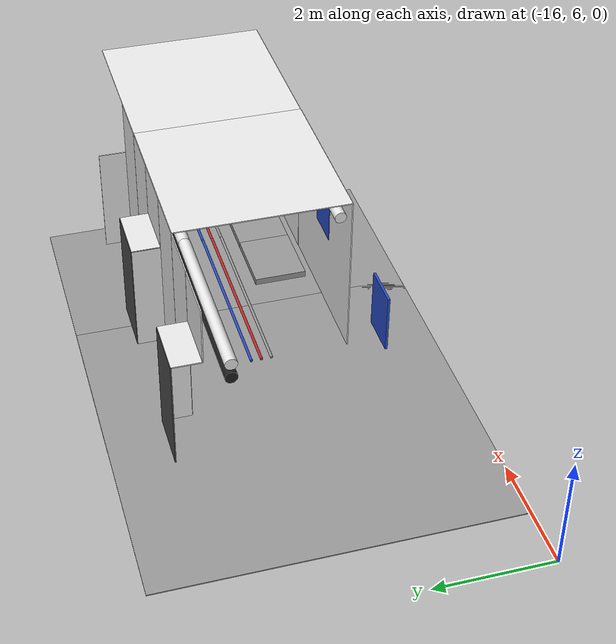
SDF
<sdf version="1.6">
 <world name="default">
  <model name="wall_left_-2_3_0_1">
   <static>1</static>
   <pose>-6.0 7.5 1.5 0.0 0.0 3.14</pose>
   <link name="link">
    <collision name="collision"><geometry><box><size>3.0 0.02 3.0</size></box></geometry></collision>
    <visual name="visual">
     <material>
      <script><name>Gazebo/White</name><uri>file://media/materials/scripts/gazebo.material</uri></script>
     </material>
     <geometry><box><size>3.0 0.02 3.0</size></box></geometry>
    </visual>
   </link>
  </model>
  <model name="wall_top_-2_3_0_1">
   <static>1</static>
   <pose>-6.0 9.0 3.0 1.57 0.0 1.57</pose>
   <link name="link">
    <collision name="collision"><geometry><box><size>3.0 0.02 3.0</size></box></geometry></collision>
    <visual name="visual">
     <material>
      <script><name>Gazebo/White</name><uri>file://media/materials/scripts/gazebo.material</uri></script>
     </material>
     <geometry><box><size>3.0 0.02 3.0</size></box></geometry>
    </visual>
   </link>
  </model>
  <model name="ceiling_1_-2_3_0_1">
   <pose>-6.0 9.0 2.55 0.0 0.0 1.57</pose>
   <link name="link_1">
    <visual name="visual">
     <geometry><box><size>0.8 1 0.1</size></box></geometry>
     <material>
      <script><uri>file://media/materials/scripts/gazebo.material</uri><name>Gazebo/Grey</name></script>
     </material>
    </visual>
    <collision name="collision"><geometry><box><size>0.8 1 0.1</size></box></geometry></collision>
   </link>
   <static>1</static>
  </model>
  <model name="ceiling_1_-2_3_2_1">
   <pose>-7.0 9.0 2.55 0.0 0.0 1.57</pose>
   <link name="link_1">
    <visual name="visual">
     <geometry><box><size>0.8 1 0.1</size></box></geometry>
     <material>
      <script><uri>file://media/materials/scripts/gazebo.material</uri><name>Gazebo/Grey</name></script>
     </material>
    </visual>
    <collision name="collision"><geometry><box><size>0.8 1 0.1</size></box></geometry></collision>
   </link>
   <static>1</static>
  </model>
  <model name="white_pipe_left_-2_3_0_1">
   <static>1</static>
   <pose>-6.0 9.0 2.76 0.0 0.0 1.57</pose>
   <link name="link_0">
    <visual name="visual">
     <pose>-1.3 0 0 1.57 0 0</pose>
     <geometry><cylinder><radius>0.1</radius><length>3.0</length></cylinder></geometry>
     <material>
      <script><uri>file://media/materials/scripts/gazebo.material</uri><name>Gazebo/White</name></script>
     </material>
    </visual>
    <collision name="collision">
     <pose>-1.3 0 0 1.57 0 0</pose>
     <geometry><cylinder><radius>0.1</radius><length>3.0</length></cylinder></geometry>
    </collision>
   </link>
  </model>
  <model name="white_pipe_right_-2_3_0_1">
   <static>1</static>
   <pose>-6.0 9.0 2.76 0.0 0.0 1.57</pose>
   <link name="link_0">
    <visual name="visual">
     <pose>1.3 0 0 1.57 0 0</pose>
     <geometry><cylinder><radius>0.1</radius><length>3.0</length></cylinder></geometry>
     <material>
      <script><uri>file://media/materials/scripts/gazebo.material</uri><name>Gazebo/White</name></script>
     </material>
    </visual>
    <collision name="collision">
     <pose>1.3 0 0 1.57 0 0</pose>
     <geometry><cylinder><radius>0.1</radius><length>3.0</length></cylinder></geometry>
    </collision>
   </link>
  </model>
  <model name="wall_right_front_left_-2_3_0_1">
   <static>1</static>
   <pose>-7.0 10.5 1.5 0.0 0.0 3.14</pose>
   <link name="link">
    <collision name="collision"><geometry><box><size>1.0 0.02 3.0</size></box></geometry></collision>
    <visual name="visual">
     <material>
      <script><name>Gazebo/White</name><uri>file://media/materials/scripts/gazebo.material</uri></script>
     </material>
     <geometry><box><size>1.0 0.02 3.0</size></box></geometry>
    </visual>
   </link>
  </model>
  <model name="wall_right_inside_left_-2_3_0_1">
   <static>1</static>
   <pose>-6.5 10.75 1.0 0.0 0.0 1.57</pose>
   <link name="link">
    <collision name="collision"><geometry><box><size>0.5 0.02 2</size></box></geometry></collision>
    <visual name="visual">
     <material>
      <script><name>Gazebo/White</name><uri>file://media/materials/scripts/gazebo.material</uri></script>
     </material>
     <geometry><box><size>0.5 0.02 2</size></box></geometry>
    </visual>
   </link>
  </model>
  <model name="wall_left_-3_3_0_1">
   <static>1</static>
   <pose>-9.0 7.5 1.5 0.0 0.0 3.14</pose>
   <link name="link">
    <collision name="collision"><geometry><box><size>3.0 0.02 3.0</size></box></geometry></collision>
    <visual name="visual">
     <material>
      <script><name>Gazebo/White</name><uri>file://media/materials/scripts/gazebo.material</uri></script>
     </material>
     <geometry><box><size>3.0 0.02 3.0</size></box></geometry>
    </visual>
   </link>
  </model>
  <model name="wall_top_-3_3_0_1">
   <static>1</static>
   <pose>-9.0 9.0 3.0 1.57 0.0 1.57</pose>
   <link name="link">
    <collision name="collision"><geometry><box><size>3.0 0.02 3.0</size></box></geometry></collision>
    <visual name="visual">
     <material>
      <script><name>Gazebo/White</name><uri>file://media/materials/scripts/gazebo.material</uri></script>
     </material>
     <geometry><box><size>3.0 0.02 3.0</size></box></geometry>
    </visual>
   </link>
  </model>
  <model name="ceiling_1_-3_3_0_1">
   <pose>-9.0 9.0 2.55 0.0 0.0 1.57</pose>
   <link name="link_1">
    <visual name="visual">
     <geometry><box><size>0.8 1 0.1</size></box></geometry>
     <material>
      <script><uri>file://media/materials/scripts/gazebo.material</uri><name>Gazebo/Grey</name></script>
     </material>
    </visual>
    <collision name="collision"><geometry><box><size>0.8 1 0.1</size></box></geometry></collision>
   </link>
   <static>1</static>
  </model>
  <model name="ceiling_1_-3_3_1_1">
   <pose>-8.0 9.0 2.55 0.0 0.0 1.57</pose>
   <link name="link_1">
    <visual name="visual">
     <geometry><box><size>0.8 1 0.1</size></box></geometry>
     <material>
      <script><uri>file://media/materials/scripts/gazebo.material</uri><name>Gazebo/Grey</name></script>
     </material>
    </visual>
    <collision name="collision"><geometry><box><size>0.8 1 0.1</size></box></geometry></collision>
   </link>
   <static>1</static>
  </model>
  <model name="ceiling_1_-3_3_2_1">
   <pose>-10.0 9.0 2.55 0.0 0.0 1.57</pose>
   <link name="link_1">
    <visual name="visual">
     <geometry><box><size>0.8 1 0.1</size></box></geometry>
     <material>
      <script><uri>file://media/materials/scripts/gazebo.material</uri><name>Gazebo/Grey</name></script>
     </material>
    </visual>
    <collision name="collision"><geometry><box><size>0.8 1 0.1</size></box></geometry></collision>
   </link>
   <static>1</static>
  </model>
  <model name="white_pipe_left_-3_3_0_1">
   <static>1</static>
   <pose>-9.0 9.0 2.76 0.0 0.0 1.57</pose>
   <link name="link_0">
    <visual name="visual">
     <pose>-1.3 0 0 1.57 0 0</pose>
     <geometry><cylinder><radius>0.1</radius><length>3.0</length></cylinder></geometry>
     <material>
      <script><uri>file://media/materials/scripts/gazebo.material</uri><name>Gazebo/White</name></script>
     </material>
    </visual>
    <collision name="collision">
     <pose>-1.3 0 0 1.57 0 0</pose>
     <geometry><cylinder><radius>0.1</radius><length>3.0</length></cylinder></geometry>
    </collision>
   </link>
  </model>
  <model name="white_pipe_right_-3_3_0_1">
   <static>1</static>
   <pose>-9.0 9.0 2.76 0.0 0.0 1.57</pose>
   <link name="link_0">
    <visual name="visual">
     <pose>1.3 0 0 1.57 0 0</pose>
     <geometry><cylinder><radius>0.1</radius><length>3.0</length></cylinder></geometry>
     <material>
      <script><uri>file://media/materials/scripts/gazebo.material</uri><name>Gazebo/White</name></script>
     </material>
    </visual>
    <collision name="collision">
     <pose>1.3 0 0 1.57 0 0</pose>
     <geometry><cylinder><radius>0.1</radius><length>3.0</length></cylinder></geometry>
    </collision>
   </link>
  </model>
  <model name="black_pipe_right_-3_3_0_1">
   <static>1</static>
   <pose>-9.0 9.0 2.76 0.0 0.0 1.57</pose>
   <link name="link_0">
    <visual name="visual">
     <pose>1.3 0 -0.25 1.57 0 0</pose>
     <geometry><cylinder><radius>0.1</radius><length>3.0</length></cylinder></geometry>
     <material>
      <script><uri>file://media/materials/scripts/gazebo.material</uri><name>Gazebo/Black</name></script>
     </material>
    </visual>
    <collision name="collision">
     <pose>1.3 0 -0.25 1.57 0 0</pose>
     <geometry><cylinder><radius>0.1</radius><length>3.0</length></cylinder></geometry>
    </collision>
   </link>
  </model>
  <model name="grey_pipe_right_-3_3_0_1">
   <static>1</static>
   <pose>-9.0 9.0 2.76 0.0 0.0 1.57</pose>
   <link name="link_0">
    <visual name="visual">
     <pose>0.7 0 0 1.57 0 0</pose>
     <geometry><cylinder><radius>0.02</radius><length>3.0</length></cylinder></geometry>
     <material>
      <script><uri>file://media/materials/scripts/gazebo.material</uri><name>Gazebo/Grey</name></script>
     </material>
    </visual>
    <collision name="collision">
     <pose>0.7 0 0 1.57 0 0</pose>
     <geometry><cylinder><radius>0.02</radius><length>3.0</length></cylinder></geometry>
    </collision>
   </link>
  </model>
  <model name="red_pipe_right_-3_3_0_1">
   <static>1</static>
   <pose>-9.0 9.0 2.76 0.0 0.0 1.57</pose>
   <link name="link_0">
    <visual name="visual">
     <pose>0.85 0 0 1.57 0 0</pose>
     <geometry><cylinder><radius>0.02</radius><length>3.0</length></cylinder></geometry>
     <material>
      <script><uri>file://media/materials/scripts/gazebo.material</uri><name>Gazebo/Red</name></script>
     </material>
    </visual>
    <collision name="collision">
     <pose>0.85 0 0 1.57 0 0</pose>
     <geometry><cylinder><radius>0.02</radius><length>3.0</length></cylinder></geometry>
    </collision>
   </link>
  </model>
  <model name="blue_pipe_right_-3_3_0_1">
   <static>1</static>
   <pose>-9.0 9.0 2.76 0.0 0.0 1.57</pose>
   <link name="link_0">
    <visual name="visual">
     <pose>1 0 0 1.57 0 0</pose>
     <geometry><cylinder><radius>0.02</radius><length>3.0</length></cylinder></geometry>
     <material>
      <script><uri>file://media/materials/scripts/gazebo.material</uri><name>Gazebo/Blue</name></script>
     </material>
    </visual>
    <collision name="collision">
     <pose>1 0 0 1.57 0 0</pose>
     <geometry><cylinder><radius>0.02</radius><length>3.0</length></cylinder></geometry>
    </collision>
   </link>
  </model>
  <model name="panel_-3_3_0_1">
   <static>1</static>
   <pose>-9.0 7.5 1.95 0.0 0.0 1.57</pose>
   <link name="link">
    <collision name="collision"><geometry><box><size>0.04 0.7 1</size></box></geometry></collision>
    <visual name="visual">
     <material>
      <script><name>Gazebo/Blue</name><uri>file://media/materials/scripts/gazebo.material</uri></script>
     </material>
     <geometry><box><size>0.04 0.7 1</size></box></geometry>
    </visual>
   </link>
  </model>
  <model name="wall_right_front_left_-3_3_0_1">
   <static>1</static>
   <pose>-10.0 10.5 1.5 0.0 0.0 3.14</pose>
   <link name="link">
    <collision name="collision"><geometry><box><size>1.0 0.02 3.0</size></box></geometry></collision>
    <visual name="visual">
     <material>
      <script><name>Gazebo/White</name><uri>file://media/materials/scripts/gazebo.material</uri></script>
     </material>
     <geometry><box><size>1.0 0.02 3.0</size></box></geometry>
    </visual>
   </link>
  </model>
  <model name="wall_right_front_right_-3_3_0_1">
   <static>1</static>
   <pose>-8.0 10.5 1.5 0.0 0.0 3.14</pose>
   <link name="link">
    <collision name="collision"><geometry><box><size>1.0 0.02 3.0</size></box></geometry></collision>
    <visual name="visual">
     <material>
      <script><name>Gazebo/White</name><uri>file://media/materials/scripts/gazebo.material</uri></script>
     </material>
     <geometry><box><size>1.0 0.02 3.0</size></box></geometry>
    </visual>
   </link>
  </model>
  <model name="wall_right_front_up_-3_3_0_1">
   <static>1</static>
   <pose>-9.0 10.5 2.5 0.0 0.0 3.14</pose>
   <link name="link">
    <collision name="collision"><geometry><box><size>1.0 0.02 1.0</size></box></geometry></collision>
    <visual name="visual">
     <material>
      <script><name>Gazebo/White</name><uri>file://media/materials/scripts/gazebo.material</uri></script>
     </material>
     <geometry><box><size>1.0 0.02 1.0</size></box></geometry>
    </visual>
   </link>
  </model>
  <model name="wall_right_inside_back_-3_3_0_1">
   <static>1</static>
   <pose>-9.0 11.0 1.0 0.0 0.0 3.14</pose>
   <link name="link">
    <collision name="collision"><geometry><box><size>1 0.02 2</size></box></geometry></collision>
    <visual name="visual">
     <material>
      <script><name>Gazebo/DarkGrey</name><uri>file://media/materials/scripts/gazebo.material</uri></script>
     </material>
     <geometry><box><size>1 0.02 2</size></box></geometry>
    </visual>
   </link>
  </model>
  <model name="wall_right_inside_left_-3_3_0_1">
   <static>1</static>
   <pose>-9.5 10.75 1.0 0.0 0.0 1.57</pose>
   <link name="link">
    <collision name="collision"><geometry><box><size>0.5 0.02 2</size></box></geometry></collision>
    <visual name="visual">
     <material>
      <script><name>Gazebo/White</name><uri>file://media/materials/scripts/gazebo.material</uri></script>
     </material>
     <geometry><box><size>0.5 0.02 2</size></box></geometry>
    </visual>
   </link>
  </model>
  <model name="wall_right_inside_right_-3_3_0_1">
   <static>1</static>
   <pose>-8.5 10.75 1.0 0.0 0.0 1.57</pose>
   <link name="link">
    <collision name="collision"><geometry><box><size>0.5 0.02 2</size></box></geometry></collision>
    <visual name="visual">
     <material>
      <script><name>Gazebo/White</name><uri>file://media/materials/scripts/gazebo.material</uri></script>
     </material>
     <geometry><box><size>0.5 0.02 2</size></box></geometry>
    </visual>
   </link>
  </model>
  <model name="wall_right_inside_top_-3_3_0_1">
   <static>1</static>
   <pose>-9.0 10.75 2.0 1.57 0.0 3.14</pose>
   <link name="link">
    <collision name="collision"><geometry><box><size>1 0.02 0.5</size></box></geometry></collision>
    <visual name="visual">
     <material>
      <script><name>Gazebo/White</name><uri>file://media/materials/scripts/gazebo.material</uri></script>
     </material>
     <geometry><box><size>1 0.02 0.5</size></box></geometry>
    </visual>
   </link>
  </model>
  <model name="wall_bottom_-3_3_0_1">
   <static>1</static>
   <pose>-9.0 9.0 0.0 0.0 0.0 1.57</pose>
   <link name="link">
    <collision name="collision"><geometry><box><size>6.0 6.0 0.02</size></box></geometry></collision>
    <visual name="visual">
     <material>
      <script><name>Gazebo/Grey</name><uri>file://media/materials/scripts/gazebo.material</uri></script>
     </material>
     <geometry><box><size>6.0 6.0 0.02</size></box></geometry>
    </visual>
   </link>
  </model>
  <model name="ceiling_1_-4_3_1_1">
   <pose>-11.0 9.0 2.55 0.0 0.0 1.57</pose>
   <link name="link_1">
    <visual name="visual">
     <geometry><box><size>0.8 1 0.1</size></box></geometry>
     <material>
      <script><uri>file://media/materials/scripts/gazebo.material</uri><name>Gazebo/Grey</name></script>
     </material>
    </visual>
    <collision name="collision"><geometry><box><size>0.8 1 0.1</size></box></geometry></collision>
   </link>
   <static>1</static>
  </model>
  <model name="white_pipe_right_-4_3_0_1">
   <static>1</static>
   <pose>-12.0 9.0 2.76 0.0 0.0 1.57</pose>
   <link name="link_0">
    <visual name="visual">
     <pose>1.3 0 0 1.57 0 0</pose>
     <geometry><cylinder><radius>0.1</radius><length>3.0</length></cylinder></geometry>
     <material>
      <script><uri>file://media/materials/scripts/gazebo.material</uri><name>Gazebo/White</name></script>
     </material>
    </visual>
    <collision name="collision">
     <pose>1.3 0 0 1.57 0 0</pose>
     <geometry><cylinder><radius>0.1</radius><length>3.0</length></cylinder></geometry>
    </collision>
   </link>
  </model>
  <model name="black_pipe_right_-4_3_0_1">
   <static>1</static>
   <pose>-12.0 9.0 2.76 0.0 0.0 1.57</pose>
   <link name="link_0">
    <visual name="visual">
     <pose>1.3 0 -0.25 1.57 0 0</pose>
     <geometry><cylinder><radius>0.1</radius><length>3.0</length></cylinder></geometry>
     <material>
      <script><uri>file://media/materials/scripts/gazebo.material</uri><name>Gazebo/Black</name></script>
     </material>
    </visual>
    <collision name="collision">
     <pose>1.3 0 -0.25 1.57 0 0</pose>
     <geometry><cylinder><radius>0.1</radius><length>3.0</length></cylinder></geometry>
    </collision>
   </link>
  </model>
  <model name="grey_pipe_right_-4_3_0_1">
   <static>1</static>
   <pose>-12.0 9.0 2.76 0.0 0.0 1.57</pose>
   <link name="link_0">
    <visual name="visual">
     <pose>0.7 0 0 1.57 0 0</pose>
     <geometry><cylinder><radius>0.02</radius><length>3.0</length></cylinder></geometry>
     <material>
      <script><uri>file://media/materials/scripts/gazebo.material</uri><name>Gazebo/Grey</name></script>
     </material>
    </visual>
    <collision name="collision">
     <pose>0.7 0 0 1.57 0 0</pose>
     <geometry><cylinder><radius>0.02</radius><length>3.0</length></cylinder></geometry>
    </collision>
   </link>
  </model>
  <model name="red_pipe_right_-4_3_0_1">
   <static>1</static>
   <pose>-12.0 9.0 2.76 0.0 0.0 1.57</pose>
   <link name="link_0">
    <visual name="visual">
     <pose>0.85 0 0 1.57 0 0</pose>
     <geometry><cylinder><radius>0.02</radius><length>3.0</length></cylinder></geometry>
     <material>
      <script><uri>file://media/materials/scripts/gazebo.material</uri><name>Gazebo/Red</name></script>
     </material>
    </visual>
    <collision name="collision">
     <pose>0.85 0 0 1.57 0 0</pose>
     <geometry><cylinder><radius>0.02</radius><length>3.0</length></cylinder></geometry>
    </collision>
   </link>
  </model>
  <model name="blue_pipe_right_-4_3_0_1">
   <static>1</static>
   <pose>-12.0 9.0 2.76 0.0 0.0 1.57</pose>
   <link name="link_0">
    <visual name="visual">
     <pose>1 0 0 1.57 0 0</pose>
     <geometry><cylinder><radius>0.02</radius><length>3.0</length></cylinder></geometry>
     <material>
      <script><uri>file://media/materials/scripts/gazebo.material</uri><name>Gazebo/Blue</name></script>
     </material>
    </visual>
    <collision name="collision">
     <pose>1 0 0 1.57 0 0</pose>
     <geometry><cylinder><radius>0.02</radius><length>3.0</length></cylinder></geometry>
    </collision>
   </link>
  </model>
  <model name="panel_-4_3_0_1">
   <static>1</static>
   <pose>-12.0 7.5 1.95 0.0 0.0 1.57</pose>
   <link name="link">
    <collision name="collision"><geometry><box><size>0.04 0.7 1</size></box></geometry></collision>
    <visual name="visual">
     <material>
      <script><name>Gazebo/Blue</name><uri>file://media/materials/scripts/gazebo.material</uri></script>
     </material>
     <geometry><box><size>0.04 0.7 1</size></box></geometry>
    </visual>
   </link>
  </model>
  <model name="wall_right_front_right_-4_3_0_1">
   <static>1</static>
   <pose>-11.0 10.5 1.5 0.0 0.0 3.14</pose>
   <link name="link">
    <collision name="collision"><geometry><box><size>1.0 0.02 3.0</size></box></geometry></collision>
    <visual name="visual">
     <material>
      <script><name>Gazebo/White</name><uri>file://media/materials/scripts/gazebo.material</uri></script>
     </material>
     <geometry><box><size>1.0 0.02 3.0</size></box></geometry>
    </visual>
   </link>
  </model>
  <model name="wall_right_front_up_-4_3_0_1">
   <static>1</static>
   <pose>-12.0 10.5 2.5 0.0 0.0 3.14</pose>
   <link name="link">
    <collision name="collision"><geometry><box><size>1.0 0.02 1.0</size></box></geometry></collision>
    <visual name="visual">
     <material>
      <script><name>Gazebo/White</name><uri>file://media/materials/scripts/gazebo.material</uri></script>
     </material>
     <geometry><box><size>1.0 0.02 1.0</size></box></geometry>
    </visual>
   </link>
  </model>
  <model name="wall_right_inside_back_-4_3_0_1">
   <static>1</static>
   <pose>-12.0 11.0 1.0 0.0 0.0 3.14</pose>
   <link name="link">
    <collision name="collision"><geometry><box><size>1 0.02 2</size></box></geometry></collision>
    <visual name="visual">
     <material>
      <script><name>Gazebo/DarkGrey</name><uri>file://media/materials/scripts/gazebo.material</uri></script>
     </material>
     <geometry><box><size>1 0.02 2</size></box></geometry>
    </visual>
   </link>
  </model>
  <model name="wall_right_inside_right_-4_3_0_1">
   <static>1</static>
   <pose>-11.5 10.75 1.0 0.0 0.0 1.57</pose>
   <link name="link">
    <collision name="collision"><geometry><box><size>0.5 0.02 2</size></box></geometry></collision>
    <visual name="visual">
     <material>
      <script><name>Gazebo/White</name><uri>file://media/materials/scripts/gazebo.material</uri></script>
     </material>
     <geometry><box><size>0.5 0.02 2</size></box></geometry>
    </visual>
   </link>
  </model>
  <model name="wall_right_inside_top_-4_3_0_1">
   <static>1</static>
   <pose>-12.0 10.75 2.0 1.57 0.0 3.14</pose>
   <link name="link">
    <collision name="collision"><geometry><box><size>1 0.02 0.5</size></box></geometry></collision>
    <visual name="visual">
     <material>
      <script><name>Gazebo/White</name><uri>file://media/materials/scripts/gazebo.material</uri></script>
     </material>
     <geometry><box><size>1 0.02 0.5</size></box></geometry>
    </visual>
   </link>
  </model>
  <model name="wall_bottom_-4_3_0_1">
   <static>1</static>
   <pose>-12.0 9.0 0.0 0.0 0.0 1.57</pose>
   <link name="link">
    <collision name="collision"><geometry><box><size>6.0 6.0 0.02</size></box></geometry></collision>
    <visual name="visual">
     <material>
      <script><name>Gazebo/Grey</name><uri>file://media/materials/scripts/gazebo.material</uri></script>
     </material>
     <geometry><box><size>6.0 6.0 0.02</size></box></geometry>
    </visual>
   </link>
  </model>
 </world>
</sdf>
